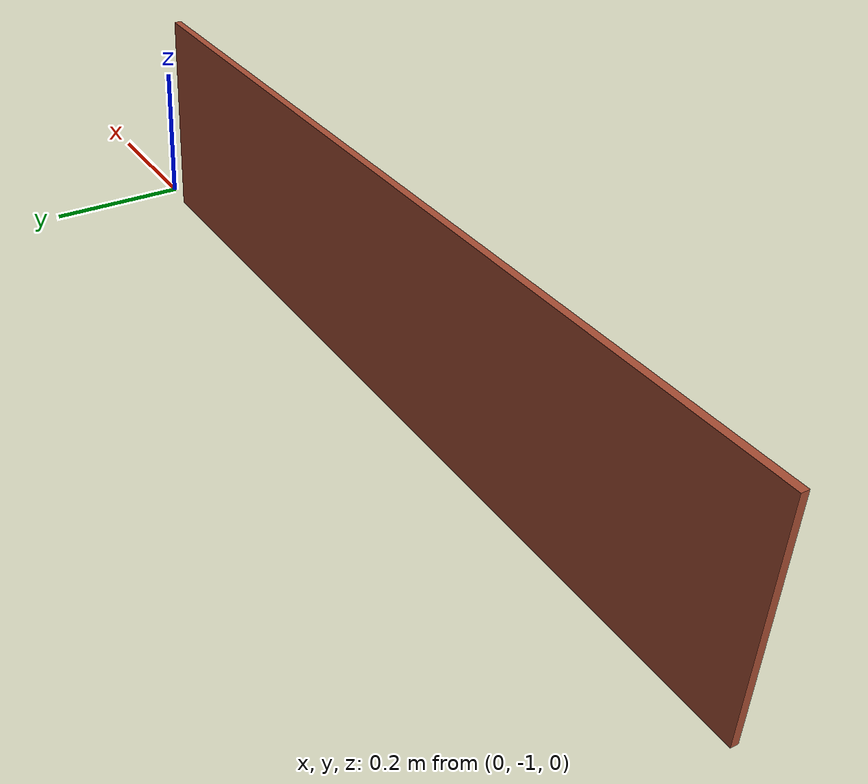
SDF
<?xml version='1.0'?>
<sdf version='1.7'>
  <model name='Pared120'>
    <pose>-0.6225 -0.5025 0 0 -0 0</pose>
    <link name='Wall_0'>
      <collision name='Wall_0_Collision'>
        <geometry>
          <box>
            <size>1.2 0.01 0.3</size>
          </box>
        </geometry>
        <pose>0 0 0.15 0 -0 0</pose>
      </collision>
      <visual name='Wall_0_Visual'>
        <pose>0 0 0.15 0 -0 0</pose>
        <geometry>
          <box>
            <size>1.2 0.01 0.3</size>
          </box>
        </geometry>
        <material>
          <script>
            <uri>file://media/materials/scripts/gazebo.material</uri>
            <name>Gazebo/Bricks</name>
          </script>
          <ambient>1 1 1 1</ambient>
        </material>
        <meta>
          <layer>0</layer>
        </meta>
      </visual>
      <pose>-0.0225 -0.4975 0 0 -0 0</pose>
    </link>
    <static>1</static>
  </model>
</sdf>
